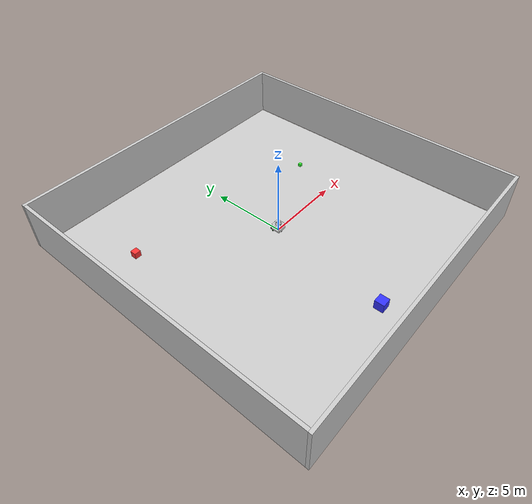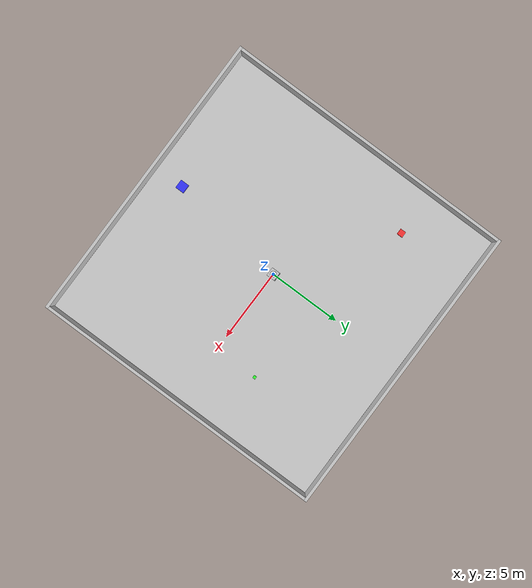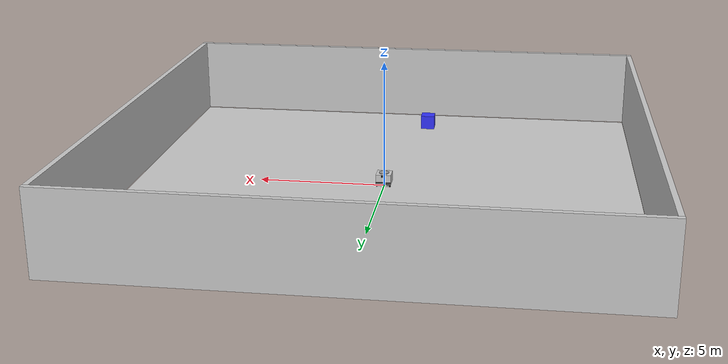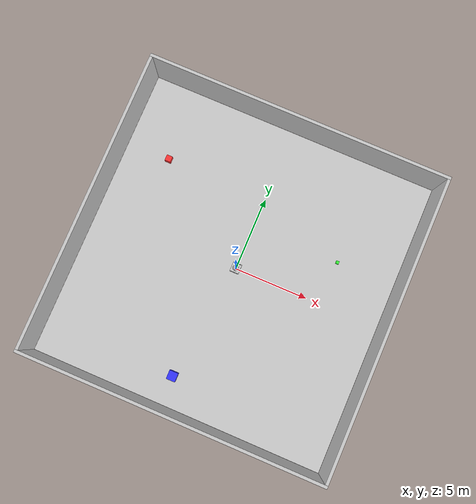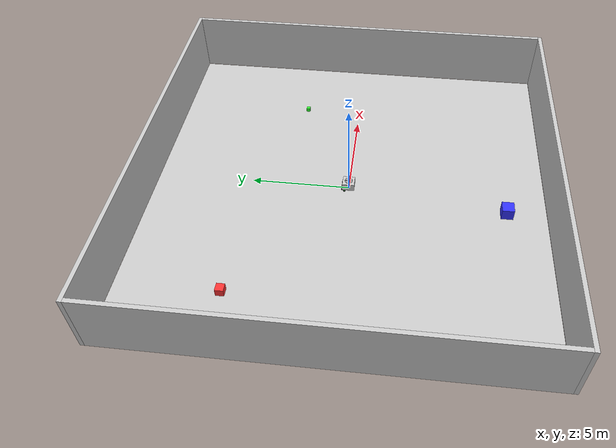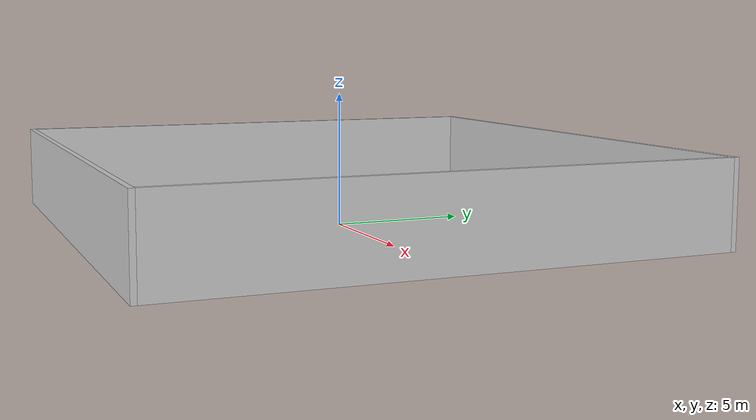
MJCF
<mujoco>
  <!-- the default, euler, seems to be unstable. sometimes the thing does
  backflips when waving the arm around. -->
  <option integrator="implicit" />

  <visual>
    <!-- increase size of framebuffer for rendering -->
    <global offwidth="1024" offheight="1024" />

    <!-- enable headlight, but make it pretty dull -->
    <!-- see: https://learnopengl.com/Lighting/Basic-Lighting -->
    <!-- see: https://mujoco.readthedocs.io/en/2.3.2/XMLreference.html#visual-headlight -->
    <headlight active="1" ambient="0 0 0" diffuse="0.2 0.2 0.2" specular="0.5 0.5 0.5" />

    <!-- hack: reduce the znear (default=0.01) to avoid clipping when camera is very close to targets -->
    <!-- see: https://mujoco.readthedocs.io/en/stable/XMLreference.html#visual-map-znear -->
    <map znear="0.002" zfar="60" />
  </visual>

  <asset>

    <texture name="grid" type="2d" builtin="checker" width="512" height="512" rgb1=".1 .2 .3" rgb2=".2 .3 .4" />
    <material name="floor" texture="grid" texrepeat="4 4" texuniform="true" reflectance="0" />
  </asset>
  <asset>
    <material name="wall" rgba="0 0 0 1" reflectance="0" />
  </asset>

  <default>
    <geom mass="1" rgba="0.8 0.8 0.8 1" />
    <joint damping=".05" />

    <default class="wheel">
      <geom type="cylinder" size="0.06 0.02" rgba="0.2 0.2 0.2 1" />
    </default>
  </default>

  <worldbody>
    <body name="robot" pos="0 0 0">
      <freejoint/>

      <!-- body is just a box, wheels below -->
      <body name="chassis" pos="0 0 0.12">
        <geom name="main" type="box" size="0.3 0.3 0.2" pos="0 0 0.21" mass="0" />
        <geom name="wheels_conn" type="box" size="0.2 0.03 0.02" pos="0 0.2 -0.01" />
        <geom name="wheels_axel" type="box" size="0.23 0.03 0.03" pos="0 0.2 -0.06" />
        <geom name="caster_conn" type="box" size="0.04 0.04 0.04" pos="0 -0.24 -0.03" />

        <geom name="bumper" type="box" size="0.3 0.025 0.05" pos="0 0.325 0.06" rgba="0.3 0.3 0.3 1" />

        <!-- front camera pointed 15 deg towards the ground -->
        <body pos="0 0.3 0.39">
          <body pos="0 0 -0.08" euler="-15 0 0">
            <geom type="box" size="0.08 0.02 0.04" pos="0 -0.02 0.04" rgba="0.2 0.2 0.2 1" />
            <camera name="pov" mode="fixed" zaxis="0 -1 0" pos="0 -0.04 0.04" />
          </body>
        </body>

        <!-- just a turntable for now -->
        <body name="arm" pos="0 0 0.41">
          <joint name="shoulder_z" />
          <geom type="cylinder" size="0.2 0.01" pos="0 0 0.01" rgba="0.6 0.6 0.6 1" />
          <geom type="box" size="0.01 0.18 0.002" pos="0 0 0.022" rgba="0.4 0.4 0.4 1" />
        </body>
      </body>

      <!-- left wheel, origin at center of wheel diameter 0.06 -->
      <body name="lwheel" pos="-0.24 0.2 0.06" zaxis="-1 0 0">
        <joint name="jl" damping=".05" />
        <geom class="wheel" pos="0 0 0.02" />
        <geom type="box" size="0.04 0.01 0.001" pos="0 0 0.041" rgba="0 1 0 1" />
      </body>

      <!-- right wheel -->
      <body name="rwheel" pos="0.24 0.2 0.06" zaxis="1 0 0">
        <joint name="jr" damping=".05" />
        <geom class="wheel" pos="0 0 0.02" />
        <geom type="box" size="0.04 0.01 0.001" pos="0 0 0.041" rgba="1 0 0 1" />
      </body>

      <!-- rear caster, no friction on ground -->
      <body name="caster" pos="0 -0.24 0">
        <geom type="sphere" size="0.03" pos="0 0 0.03" condim="1" priority="1" rgba="0.2 0.2 0.2 1" />
        <geom type="cylinder" size="0.03 0.01" pos="0 0 0.04" />
      </body>

    </body>

    <!-- floor -->
    <geom type="plane" size="10 10 .01" material="floor" />

    <!-- walls -->
    <geom name="wall_left"  type="box" size="0.1 10 1.6" pos="-10.1 0 1.6" material="wall" />
    <geom name="wall_right" type="box" size="0.1 10 1.6" pos="10.1 0 1.6" material="wall" />
    <geom name="wall_front" type="box" size="10.2 0.1 1.6" pos="0 10.1 1.6" material="wall" />
    <geom name="wall_back"  type="box" size="10.2 0.1 1.6" pos="0 -10.1 1.6" material="wall" />

    <!-- couple of random lights -->
    <light pos="-4 4 12" dir="0 0 -1" attenuation="0.25 0 0" />
    <light pos="4 -4 9" dir="0 0 -1" attenuation="0.25 0 0" />

    <!-- targets -->
    <!-- TODO: replace condim=1 with friction -->
    <body name="target_red" pos="-7 5 0">
      <freejoint/>
      <light pos="0 0 2" dir="0 0 -1" />
      <geom type="box" size="0.2 0.2 0.2" pos="0 0 0.2" rgba="1 0.2 0.2 1" condim="1" />
    </body>
    <body name="target_green" pos="6 3 0">
      <freejoint/>
      <light pos="0 0 2" dir="0 0 -1" />
      <geom type="box" size="0.1 0.1 0.1" pos="0 0 0.1" rgba="0.2 1 0.2 1" />
    </body>
    <body name="target_blue" pos="-1 -8 0">
      <freejoint/>
      <light pos="0 0 2" dir="0 0 -1" />
      <geom type="box" size="0.3 0.3 0.3" pos="0 0 0.3" rgba="0.2 0.2 1 1" />
    </body>

    <!-- above origin, high enough to see the entire arena -->
    <camera name="overview" pos="0 0 26" />
  </worldbody>

  <tendon>
    <fixed name="forward">
      <joint joint="jl" coef=".5"/>
      <joint joint="jr" coef="-.5"/>
    </fixed>
    <fixed name="turn">
      <joint joint="jl" coef=".5"/>
      <joint joint="jr" coef=".5"/>
    </fixed>
  </tendon>

  <actuator>
    <motor name="forward" tendon="forward" ctrlrange="-1 1"/>
    <motor name="turn" tendon="turn" ctrlrange="-1 1"/>
    <position name="sz" joint="shoulder_z" ctrlrange="-1.57 1.57" kp="50" kv="5" />
  </actuator>
</mujoco>
